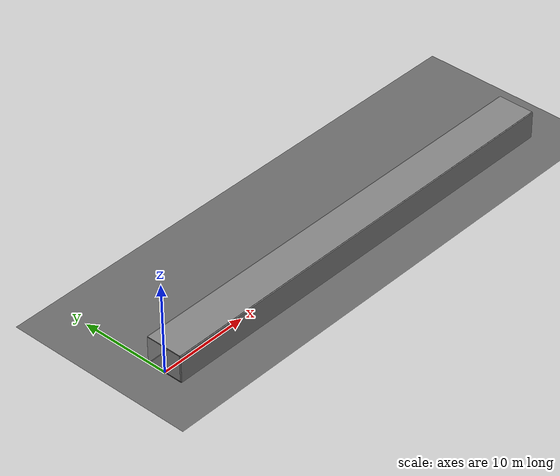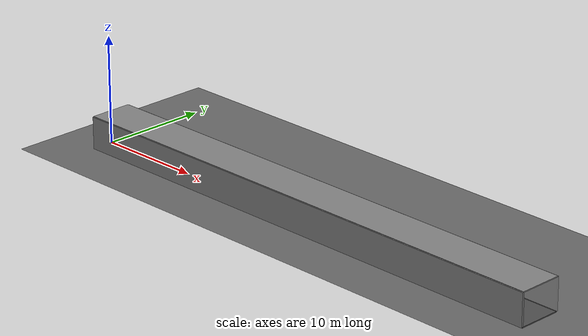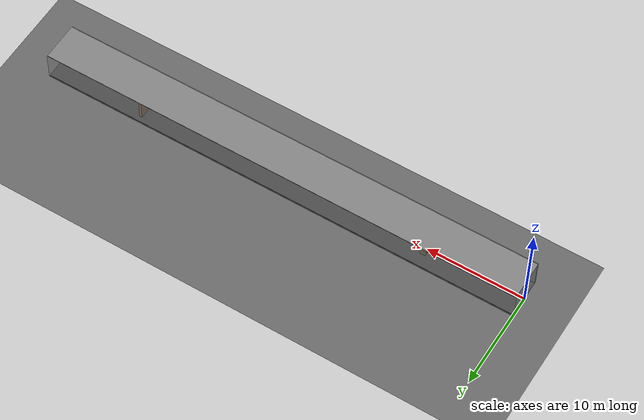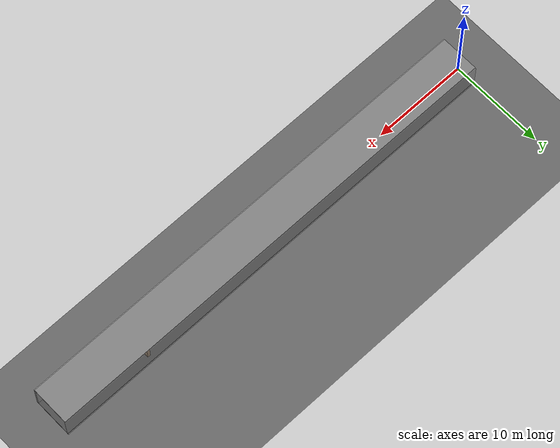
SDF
<?xml version="1.0" ?>
<sdf version="1.6">
  <world name="tunnel_world">

    <!-- Lighting -->
    <light name="ambient_light" type="ambient">
      <color>0.3 0.3 0.3 1</color>
    </light>

    <light name="directional_light" type="directional">
      <direction>0 0 -1</direction>
      <diffuse>0.5 0.5 0.5 1</diffuse>
      <specular>0.1 0.1 0.1 1</specular>
    </light>

    <!-- Physics -->
    <physics type="ode">
      <real_time_update_rate>1000</real_time_update_rate>
      <max_step_size>0.001</max_step_size>
    </physics>

    <!-- Ground plane -->
    <model name="ground_plane">
      <static>true</static>
      <link name="link">
        <collision name="collision">
          <geometry>
            <plane>
              <normal>0 0 1</normal>
              <size>100 100</size>
            </plane>
          </geometry>
        </collision>
        <visual name="visual">
          <geometry>
            <plane>
              <normal>0 0 1</normal>
              <size>100 100</size>
            </plane>
          </geometry>
          <material>
            <ambient>0.3 0.3 0.3 1</ambient>
            <diffuse>0.4 0.4 0.4 1</diffuse>
          </material>
        </visual>
      </link>
    </model>

    <!-- Tunnel floor -->
    <model name="tunnel_floor">
      <static>true</static>
      <pose>25 0 0 0 0 0</pose>
      <link name="link">
        <collision name="collision">
          <geometry>
            <box><size>50 4 0.1</size></box>
          </geometry>
        </collision>
        <visual name="visual">
          <geometry>
            <box><size>50 4 0.1</size></box>
          </geometry>
          <material>
            <ambient>0.2 0.2 0.2 1</ambient>
            <diffuse>0.3 0.3 0.3 1</diffuse>
          </material>
        </visual>
      </link>
    </model>

    <!-- Left wall -->
    <model name="left_wall">
      <static>true</static>
      <pose>25 2 1.5 0 0 0</pose>
      <link name="link">
        <collision name="collision">
          <geometry>
            <box><size>50 0.2 3</size></box>
          </geometry>
        </collision>
        <visual name="visual">
          <transparency>0.7</transparency>
          <geometry>
            <box><size>50 0.2 3</size></box>
          </geometry>
          <material>
            <ambient>0.4 0.4 0.4 0.3</ambient>
            <diffuse>0.5 0.5 0.5 0.3</diffuse>
          </material>
        </visual>
      </link>
    </model>

    <!-- Right wall -->
    <model name="right_wall">
      <static>true</static>
      <pose>25 -2 1.5 0 0 0</pose>
      <link name="link">
        <collision name="collision">
          <geometry>
            <box><size>50 0.2 3</size></box>
          </geometry>
        </collision>
        <visual name="visual">
          <geometry>
            <box><size>50 0.2 3</size></box>
          </geometry>
          <material>
            <ambient>0.4 0.4 0.4 1</ambient>
            <diffuse>0.5 0.5 0.5 1</diffuse>
          </material>
        </visual>
      </link>
    </model>

    <!-- Ceiling -->
    <model name="ceiling">
      <static>true</static>
      <pose>25 0 3 0 0 0</pose>
      <link name="link">
        <collision name="collision">
          <geometry>
            <box><size>50 4 0.1</size></box>
          </geometry>
        </collision>
        <visual name="visual">
          <geometry>
            <box><size>50 4 0.1</size></box>
          </geometry>
          <material>
            <ambient>0.4 0.4 0.4 1</ambient>
            <diffuse>0.5 0.5 0.5 1</diffuse>
          </material>
        </visual>
      </link>
    </model>

    <!-- Obstacle 1 - rock -->
    <model name="obstacle_1">
      <static>true</static>
      <pose>10 0.5 0.3 0 0 0</pose>
      <link name="link">
        <collision name="collision">
          <geometry>
            <box><size>0.6 0.5 0.6</size></box>
          </geometry>
        </collision>
        <visual name="visual">
          <geometry>
            <box><size>0.6 0.5 0.6</size></box>
          </geometry>
          <material>
            <ambient>0.5 0.4 0.3 1</ambient>
            <diffuse>0.6 0.5 0.4 1</diffuse>
          </material>
        </visual>
      </link>
    </model>

    <!-- Obstacle 2 - debris -->
    <model name="obstacle_2">
      <static>true</static>
      <pose>25 -0.5 0.2 0 0 0.5</pose>
      <link name="link">
        <collision name="collision">
          <geometry>
            <box><size>0.8 0.4 0.4</size></box>
          </geometry>
        </collision>
        <visual name="visual">
          <geometry>
            <box><size>0.8 0.4 0.4</size></box>
          </geometry>
          <material>
            <ambient>0.5 0.4 0.3 1</ambient>
            <diffuse>0.6 0.5 0.4 1</diffuse>
          </material>
        </visual>
      </link>
    </model>

    <!-- Obstacle 3 - blocked section -->
    <model name="obstacle_3">
      <static>true</static>
      <pose>40 0 1 0 0 0</pose>
      <link name="link">
        <collision name="collision">
          <geometry>
            <box><size>0.3 3 2</size></box>
          </geometry>
        </collision>
        <visual name="visual">
          <geometry>
            <box><size>0.3 3 2</size></box>
          </geometry>
          <material>
            <ambient>0.5 0.4 0.3 1</ambient>
            <diffuse>0.6 0.5 0.4 1</diffuse>
          </material>
        </visual>
      </link>
    </model>

  </world>
</sdf>
